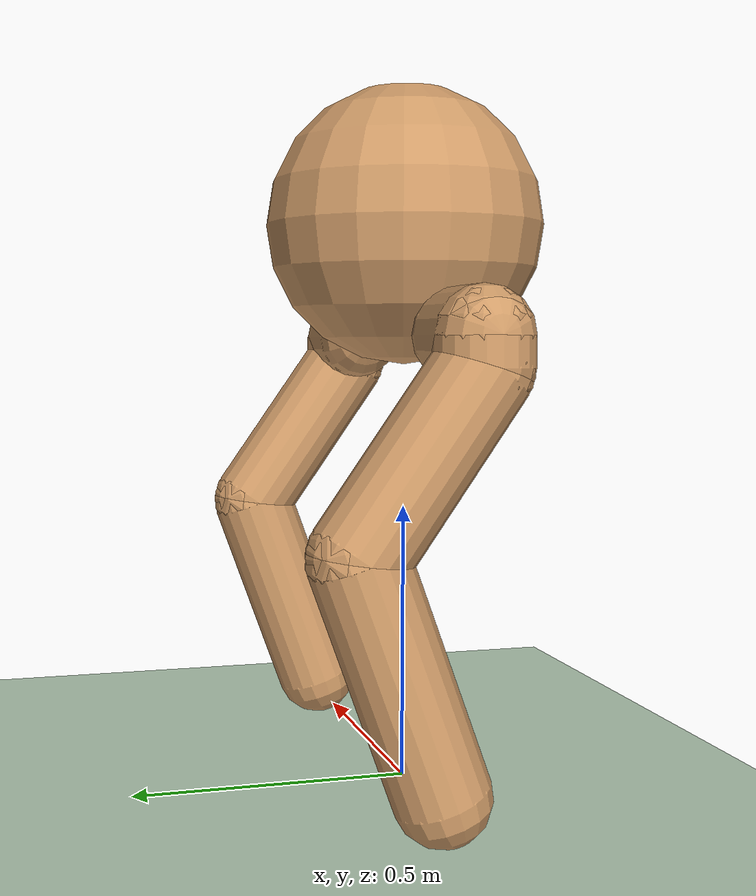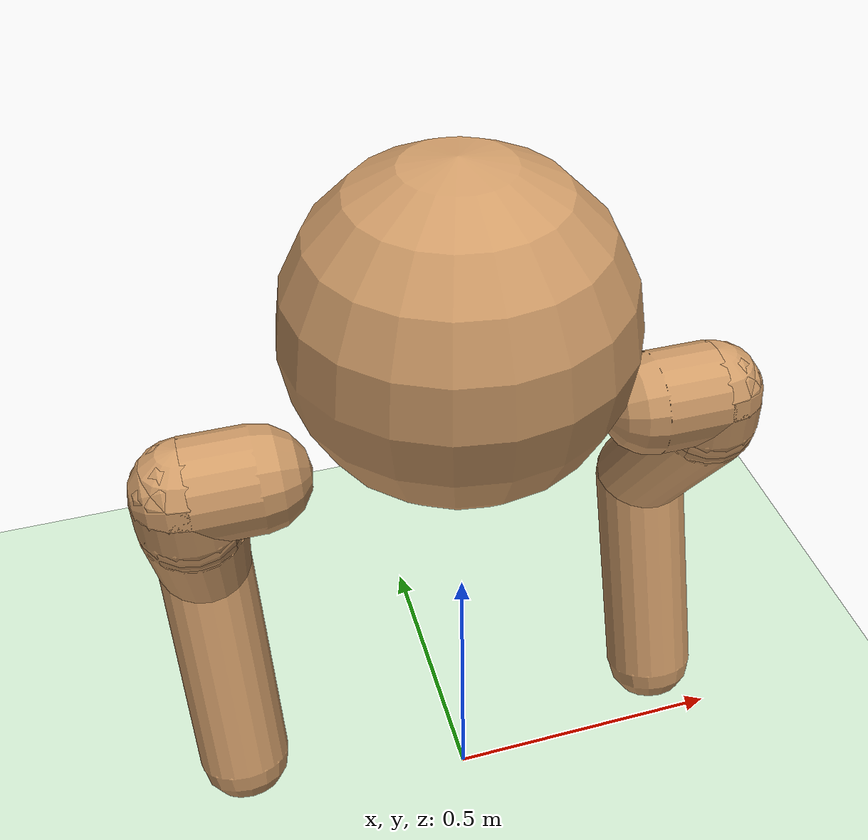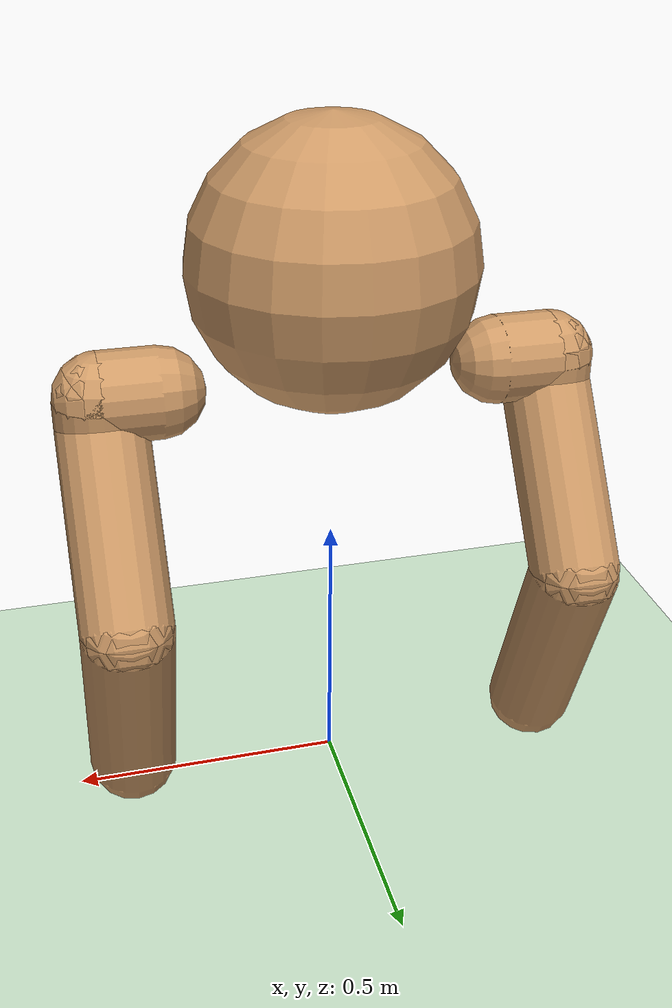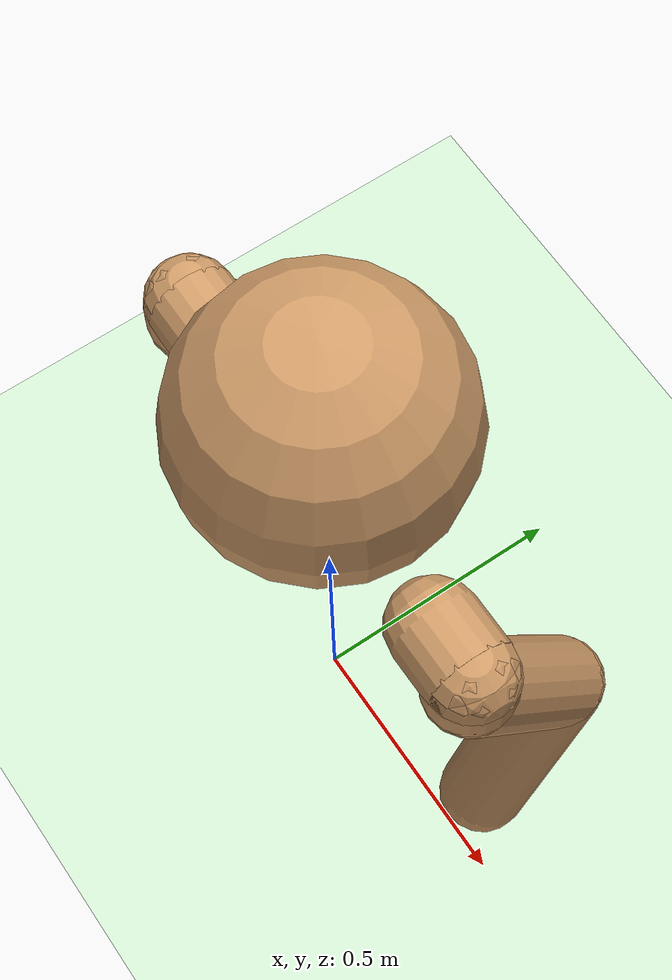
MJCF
<mujoco model="biped">
  <compiler angle="degree" coordinate="local" inertiafromgeom="true"/>
  <option integrator="RK4" timestep="0.01"/>
  <custom>
    <numeric data="0.0 0.0 0.55 1.0 0.0 0.0 0.0 0.0 1.0 0.0 -1.0 0.0 -1.0 0.0 1.0" name="init_qpos"/>
  </custom>
  <default>
    <joint armature="1" damping="1" limited="true"/>
    <geom conaffinity="0" condim="3" density="5.0" friction="1 0.5 0.5" margin="0.01" rgba="0.8 0.6 0.4 1"/>
  </default>
  <asset>
    <texture builtin="gradient" height="100" rgb1="1 1 1" rgb2="0 0 0" type="skybox" width="100"/>
    <texture builtin="flat" height="1278" mark="cross" markrgb="1 1 1" name="texgeom" random="0.01" rgb1="0.8 0.6 0.4" rgb2="0.8 0.6 0.4" type="cube" width="127"/>
    <texture builtin="checker" height="100" name="texplane" rgb1="0 0 0" rgb2="0.8 0.8 0.8" type="2d" width="100"/>
    <material name="MatPlane" reflectance="0.5" shininess="1" specular="1" texrepeat="60 60" texture="texplane"/>
    <material name="geom" texture="texgeom" texuniform="true"/>
  </asset>
  <worldbody>
    <light cutoff="100" diffuse="1 1 1" dir="-0 0 -1.3" directional="true" exponent="1" pos="0 0 1.3" specular=".1 .1 .1"/>
    <geom conaffinity="1" condim="3" material="MatPlane" name="floor" pos="0 0 0" rgba="0.8 0.9 0.8 1" size="40 40 40" type="plane"/>
    <body name="torso" pos="0 0 0.81">
      <camera name="track" mode="trackcom" pos="0 -3 0.3" xyaxes="1 0 0 0 0 1"/>
      <geom name="torso_geom" pos="0 0 0.2" size="0.25" type="sphere"/>
      <joint armature="0" damping="0" limited="false" margin="0.01" name="root" pos="0 0 0" type="free"/>
	  <body name = "front_left_waist" pos="0.3 0 0">
        <joint axis="0 0 1" name="waist_1" pos="0.0 0.0 0.0" range="-90 90" type="hinge"/>
        <geom fromto="0.0 0.0 0.0 0.1 0.0 0.0" name="waist_1_geom" size="0.08" type="capsule"/>
        <body name="front_left_leg" pos="0.1 0 0" euler="0 0 0">
          <geom fromto="0.0 0.0 0.0 0.0 0.0 -0.05" name="aux_1_geom" size="0.08" type="capsule"/>
          <body name="aux_1" pos="0.0 0.0 -0.05" euler="35 0 0">
            <joint axis="1 0 0" name="hip_1" pos="0.0 0.0 0.0" range="-120 120" type="hinge"/>
            <geom fromto="0.0 0.0 0.0 0.0 0.0 -0.35" name="left_leg_geom" size="0.08" type="capsule"/>
            <body pos="0.0 0.0 -0.35" euler="-55 0 0">
              <joint axis="1 0 0" name="ankle_1" pos="0.0 0.0 0.0" range="-65 175" type="hinge"/>
              <geom fromto="0.0 0.0 0.0 0.0 0.0 -0.4" name="left_ankle_geom" size="0.08" type="capsule"/>
            </body>
          </body>
        </body>
      </body>
	  <body name = "front_right_waist" pos="-0.3 0 0">
        <joint axis="0 0 1" name="waist_2" pos="0.0 0.0 0.0" range="-90 90" type="hinge"/>
        <geom fromto="0.0 0.0 0.0 -0.1 0.0 0.0" name="waist_2_geom" size="0.08" type="capsule"/>
        <body name="front_right_leg" pos="-0.1 0 0" euler="0 0 0">
          <geom fromto="0.0 0.0 0.0 0.0 0.0 -0.05" name="aux_2_geom" size="0.08" type="capsule"/>
          <body name="aux_2" pos="0.0 0.0 -0.05" euler="35 0 0">
            <joint axis="-1 0 0" name="hip_2" pos="0.0 0.0 0.0" range="-120 120" type="hinge"/>
            <geom fromto="0.0 0.0 0.0 0.0 0.0 -0.35" name="right_leg_geom" size="0.08" type="capsule"/>
            <body pos="0.0 0.0 -0.35" euler="-55 0 0">
              <joint axis="-1 0 0" name="ankle_2" pos="0.0 0.0 0.0" range="-65 175" type="hinge"/>
              <geom fromto="0.0 0.0 0.0 0.0 0.0 -0.4" name="right_ankle_geom" size="0.08" type="capsule"/>
            </body>
          </body>
        </body>
      </body>
    </body>
  </worldbody>
  <actuator>
    <motor ctrllimited="true" ctrlrange="-1.0 1.0" joint="waist_1" gear="5"/>
    <motor ctrllimited="true" ctrlrange="-1.0 1.0" joint="hip_1" gear="5"/>
    <motor ctrllimited="true" ctrlrange="-1.0 1.0" joint="ankle_1" gear="5"/>
    <motor ctrllimited="true" ctrlrange="-1.0 1.0" joint="waist_2" gear="5"/>
    <motor ctrllimited="true" ctrlrange="-1.0 1.0" joint="hip_2" gear="5"/>
    <motor ctrllimited="true" ctrlrange="-1.0 1.0" joint="ankle_2" gear="5"/>
  </actuator>
</mujoco>
